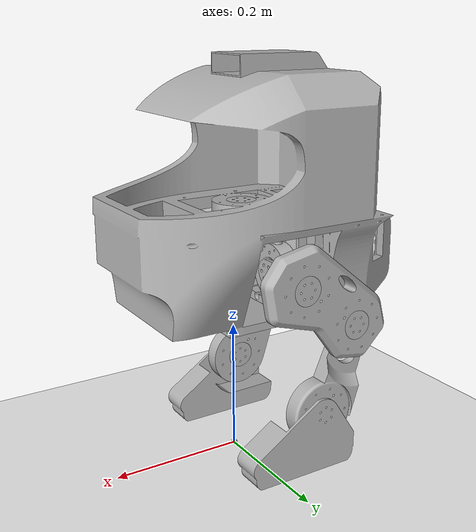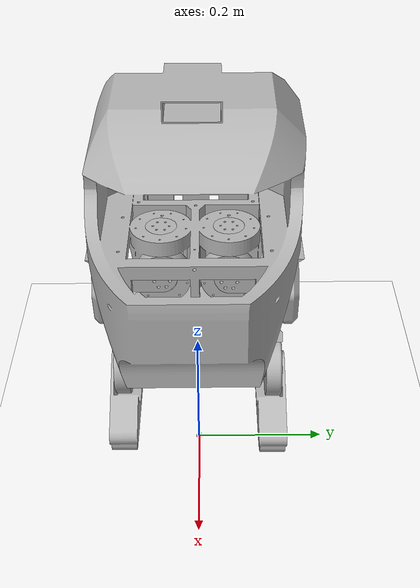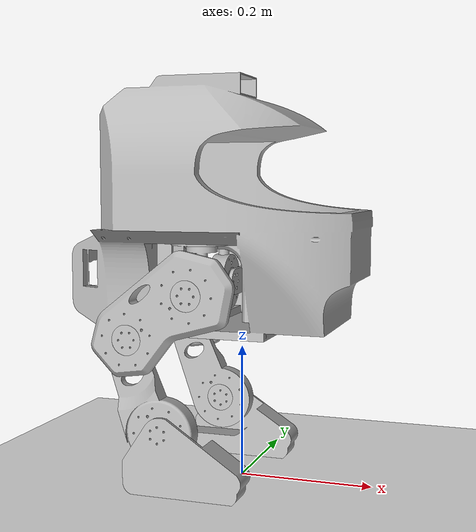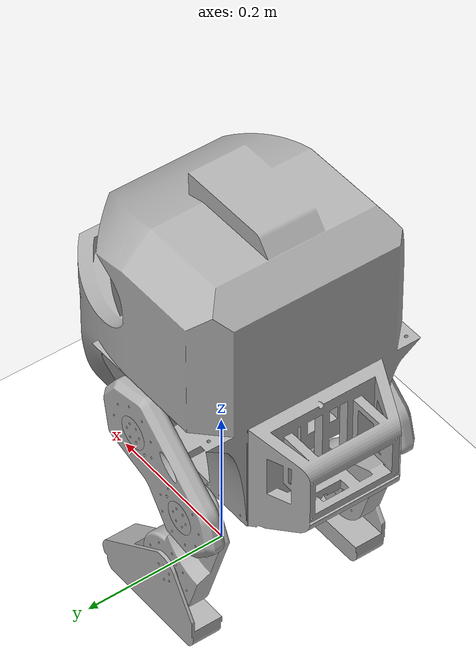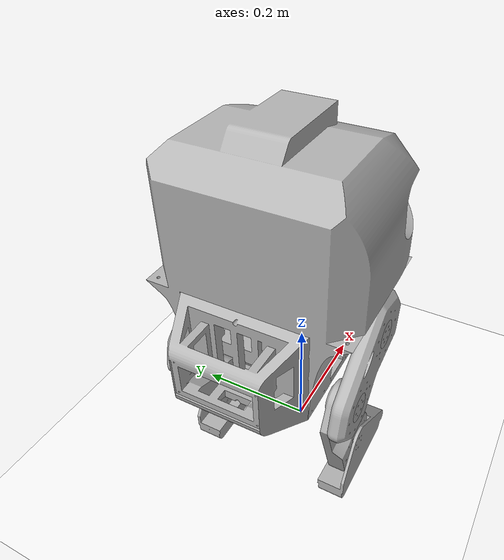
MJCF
<mujoco model=" scene">
  <include file="mak-zero.xml"/>

  <visual>
    <headlight diffuse="0.6 0.6 0.6"  ambient="0.3 0.3 0.3" specular="0 0 0"/>
    <rgba haze="0.15 0.25 0.35 1"/>
    <global azimuth="120" elevation="-20"/>
  </visual>

  <asset>
    <texture type="skybox" builtin="gradient" rgb1="0.3 0.5 0.7" rgb2="0 0 0" width="512"
        height="3072"/>
    <texture type="2d" name="groundplane" builtin="checker" mark="edge" rgb1="0.2 0.3 0.4"
        rgb2="0.1 0.2 0.3" markrgb="0.8 0.8 0.8" width="300" height="300"/>
    <material name="groundplane" texture="groundplane" texuniform="true" texrepeat="1 1"
        reflectance="0.2"/>
  </asset>

  <worldbody>
    <light pos="0 0 1.5" dir="0 0 -1" directional="true"/>
    <geom name="floor" size="0 0 0.25" type="plane" material="groundplane"/>
  </worldbody>

</mujoco>

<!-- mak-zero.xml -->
<mujoco model="mak-zero">
  <compiler angle="radian" />
  <option integrator="implicitfast"/>

  <default>
    <default class="mak-zero">
      <joint limited='true'/>
      <motor ctrllimited='true'/>
      <geom friction="1.0" margin="0.001" condim="1"/>
      <default class="leg-joint-param">
        <joint damping="0.01" frictionloss="0.1" armature="0.1" range="-0.785398 0.785398"/>
      </default>

      <default class="knee-joint-param">
        <joint damping="0.01" frictionloss="0.1" armature="0.1" range="-0.785398 0.785398"/>
      </default>

      <default class="ankle-joint-param">
        <joint damping="0.01" frictionloss="0.1" armature="0.1" range="-0.785398 0.785398"/>
      </default>
    </default>
  </default>

  <asset>
    <mesh name="pelvis" file="/Users/wangxiaochuan/wangxc/popmart/mak-gym/resources/robots/makZero/meshes/pelvis.stl" scale="0.001 0.001 0.001" />
    <mesh name="left_foot" file="/Users/wangxiaochuan/wangxc/popmart/mak-gym/resources/robots/makZero/meshes/left_foot.stl" scale="0.001 0.001 0.001" />
    <mesh name="left_shin" file="/Users/wangxiaochuan/wangxc/popmart/mak-gym/resources/robots/makZero/meshes/left_shin.stl" scale="0.001 0.001 0.001" />
    <mesh name="left_thigh" file="/Users/wangxiaochuan/wangxc/popmart/mak-gym/resources/robots/makZero/meshes/left_thigh.stl" scale="0.001 0.001 0.001" />
    <mesh name="left_hip" file="/Users/wangxiaochuan/wangxc/popmart/mak-gym/resources/robots/makZero/meshes/left_hip.stl" scale="0.001 0.001 0.001" />
    <mesh name="left_hip_rotation" file="/Users/wangxiaochuan/wangxc/popmart/mak-gym/resources/robots/makZero/meshes/left_hip_rotation.stl" scale="0.001 0.001 0.001" />
    <mesh name="right_foot" file="/Users/wangxiaochuan/wangxc/popmart/mak-gym/resources/robots/makZero/meshes/right_foot.stl" scale="0.001 0.001 0.001" />
    <mesh name="right_shin" file="/Users/wangxiaochuan/wangxc/popmart/mak-gym/resources/robots/makZero/meshes/right_shin.stl" scale="0.001 0.001 0.001" />
    <mesh name="right_thigh" file="/Users/wangxiaochuan/wangxc/popmart/mak-gym/resources/robots/makZero/meshes/right_thigh.stl" scale="0.001 0.001 0.001" />
    <mesh name="right_hip" file="/Users/wangxiaochuan/wangxc/popmart/mak-gym/resources/robots/makZero/meshes/right_hip.stl" scale="0.001 0.001 0.001" />
    <mesh name="right_hip_rotation" file="/Users/wangxiaochuan/wangxc/popmart/mak-gym/resources/robots/makZero/meshes/right_hip_rotation.stl" scale="0.001 0.001 0.001" />
  </asset>

  <worldbody>
    <light name="spotlight" mode="targetbodycom" target="mak-zero" pos="0 -1 2"/>
    <body name="mak-zero">
      <camera name="track" pos="0 -3 1" zaxis="0 -1 0.5" mode="track"/>
      <freejoint/>
      <body name="pelvis" pos="0 0 0" childclass="mak-zero">
        <geom type="mesh" rgba="0.7 0.7 0.7 1" mesh="pelvis"/>
        <inertial pos="-0.053756 0.00118338 0.341947" quat="0.480275 0.513547 0.53279 0.470893" mass="5.713" diaginertia="0.43175 0.373333 0.200101" />
        <site name="imu" pos="0 0 0"/>
        <body name="left_hip_rotation" pos="-0.046575 0.048318 0.381049">
          <inertial pos="0.046575 -0.048318 -0.381049" quat="0.999573 0.0213461 0.0199274 0.00141326" mass="0.633" diaginertia="0.00533636 0.004183 0.00196963" />
          <joint name="left_hip_yaw" pos="0 0 0" axis="0 0 -1" range="-0.349066 0.349066" actuatorfrcrange="-23.7 23.7" />
        <geom pos="0.046575 -0.048318 -0.381049" type="mesh" rgba="0.7 0.7 0.7 1" mesh="left_hip_rotation" />
        <body name="left_hip" pos="-0.012208 -0.000241 -0.088208">
          <inertial pos="0.058783 -0.048077 -0.292841" quat="0.704899 0.708795 -0.00571972 -0.0263546" mass="0.633" diaginertia="0.00149816 0.00136791 0.000505934" />
          <joint name="left_hip_roll" pos="0 0 0" axis="1 0 0" range="-0.174533 0.174533" actuatorfrcrange="-23.7 23.7" />
          <geom pos="0.058783 -0.048077 -0.292841" quat="1 0 0 0" type="mesh" rgba="0.7 0.7 0.7 1" mesh="left_hip" />
          <body name="left_thigh" pos="0.02885 0.1018 -0.000556">
            <inertial pos="0.029933 -0.149877 -0.292285" quat="0.633403 0.297734 0.294346 0.650781" mass="0.633" diaginertia="0.0473468 0.0413446 0.0120747" />
            <joint name="left_hip_pitch" pos="0 0 0" axis="0 1 0" range="-0.523599 0.523599" actuatorfrcrange="-23.7 23.7" />
            <geom pos="0.029933 -0.149877 -0.292285" quat="1 0 0 0" type="mesh" rgba="0.7 0.7 0.7 1" mesh="left_thigh" />
            <body name="left_shin" pos="-0.088973 0 -0.067516">
              <inertial pos="0.118906 -0.149877 -0.224769" quat="0.708097 -0.166338 -0.130184 0.673783" mass="0.633" diaginertia="0.0117688 0.0102167 0.00215741" />
              <joint name="left_knee" pos="0 0 0" axis="0 1 0" range="-0.523599 0.523599" actuatorfrcrange="-23.7 23.7" />
              <geom pos="0.118906 -0.149877 -0.224769" quat="1 0 0 0" type="mesh" rgba="0.7 0.7 0.7 1" mesh="left_shin" />
              <body name="left_foot_link" pos="0.044426 -0.04 -0.134774">
                <inertial pos="0.07448 -0.109877 -0.089995" quat="0.540863 0.468785 0.58167 0.386481" mass="0.678" diaginertia="0.0103795 0.00833717 0.00325637" />
                <joint name="left_ankle" pos="0 0 0" axis="0 1 0" range="-0.523599 0.523599" actuatorfrcrange="-23.7 23.7" />
                <geom pos="0.07448 -0.109877 -0.089995" quat="1 0 0 0" type="mesh" rgba="0.7 0.7 0.7 1" mesh="left_foot" />
                <body name="left_foot" pos="0.025 0 -0.0785">
                  <inertial pos="0 0 0" mass="1e-09" diaginertia="0 0 0" />
                  <body name="left_foot_force_sensor" pos="0 0 -0.001">
                    <inertial pos="0 0 0" mass="0.001" diaginertia="0.0001 0.0001 0.0001" />
                  </body>
                </body>
              </body>
            </body>
          </body>
        </body>
      </body>
        <body name="right_hip_rotation" pos="-0.046575 -0.051682 0.381049">
        <inertial pos="0.046575 0.051682 -0.381049" quat="0.999573 -0.0213461 0.0199274 -0.00141326" mass="0.633" diaginertia="0.00533636 0.004183 0.00196963" />
        <joint name="right_hip_yaw" pos="0 0 0" axis="0 0 -1" range="-0.349066 0.349066" actuatorfrcrange="-23.7 23.7" />
        <geom pos="0.046575 0.051682 -0.381049" type="mesh" rgba="0.7 0.7 0.7 1" mesh="right_hip_rotation" />
        <body name="right_hip" pos="-0.012208 -0.000241 -0.088208">
          <inertial pos="0.058783 0.051923 -0.292841" quat="0.708795 0.704899 0.0263546 0.00571972" mass="0.633" diaginertia="0.00149816 0.00136791 0.000505934" />
          <joint name="right_hip_roll" pos="0 0 0" axis="1 0 0" range="-0.174533 0.174533" actuatorfrcrange="-23.7 23.7" />
          <geom pos="0.058783 0.051923 -0.292841" quat="1 0 0 0" type="mesh" rgba="0.7 0.7 0.7 1" mesh="right_hip" />
          <body name="right_thigh" pos="0.02485 -0.1011 -0.000556">
            <inertial pos="0.033933 0.153023 -0.292285" quat="0.650781 0.294346 0.297734 0.633403" mass="0.633" diaginertia="0.0473468 0.0413446 0.0120747" />
            <joint name="right_hip_pitch" pos="0 0 0" axis="0 -1 0" range="-0.523599 0.523599" actuatorfrcrange="-23.7 23.7" />
            <geom pos="0.033933 0.153023 -0.292285" quat="1 0 0 0" type="mesh" rgba="0.7 0.7 0.7 1" mesh="right_thigh" />
            <body name="right_shin" pos="-0.090138 0 -0.065953">
              <inertial pos="0.124071 0.153023 -0.226332" quat="0.673783 -0.130184 -0.166338 0.708097" mass="0.633" diaginertia="0.0117688 0.0102167 0.00215741" />
              <joint name="right_knee" pos="0 0 0" axis="0 1 0" range="-0.523599 0.523599" actuatorfrcrange="-23.7 23.7" />
              <geom pos="0.124071 0.153023 -0.226332" quat="1 0 0 0" type="mesh" rgba="0.7 0.7 0.7 1" mesh="right_shin" />
              <body name="right_foot_link" pos="0.042068 0.04 -0.135529">
                <inertial pos="0.082003 0.113023 -0.090803" quat="0.386481 0.58167 0.468785 0.540863" mass="0.678" diaginertia="0.0103795 0.00833717 0.00325637" />
                <joint name="right_ankle" pos="0 0 0" axis="0 -1 0" range="-0.523599 0.523599" actuatorfrcrange="-23.7 23.7" />
                <geom pos="0.082003 0.113023 -0.090803" quat="1 0 0 0" type="mesh" rgba="0.7 0.7 0.7 1" mesh="right_foot" />
                <body name="right_foot" pos="0.025 0 -0.0785">
                  <inertial pos="0 0 0" mass="1e-09" diaginertia="0 0 0" />
                  <body name="right_foot_force_sensor" pos="0 0 -0.001">
                    <inertial pos="0 0 0" mass="0.001" diaginertia="0.0001 0.0001 0.0001" />
                  </body>
                </body>
              </body>
            </body>
          </body>
        </body>
      </body>
      </body>
    </body>
    <geom name="ground_plane" type="plane" size="5 5 10" material="MatPlane" rgba="1 1 1 1" /><light pos="0 0 1000" castshadow="true" />
  </worldbody>
  <contact>
    <exclude body1="pelvis" body2="right_hip"/>
    <exclude body1="pelvis" body2="left_hip"/>
    <exclude body1="pelvis" body2="left_thigh"/>
    <exclude body1="pelvis" body2="right_thigh"/>
  </contact>
  <actuator>
    <position kp="40" kv="1.3" name="left_hip_yaw" joint="left_hip_yaw" gear="1" forcerange="-23.7 23.7" ctrlrange="-30 30"/>
    <position kp="40" kv="1.3" name="left_hip_roll" joint="left_hip_roll" gear="1" forcerange="-23.7 23.7" ctrlrange="-30 30"/>
    <position kp="40" kv="1.3" name="left_hip_pitch" joint="left_hip_pitch" gear="1" forcerange="-23.7 23.7" ctrlrange="-30 30"/>
    <position kp="35" kv="1.3" name="left_knee" joint="left_knee" gear="1" forcerange="-23.7 23.7" ctrlrange="-30 30"/>
    <position kp="30" kv="1.3" name="left_ankle" joint="left_ankle" gear="1" forcerange="-23.7 23.7" ctrlrange="-30 30"/>
    <position kp="40" kv="1.3" name="right_hip_yaw" joint="right_hip_yaw" gear="1" forcerange="-23.7 23.7" ctrlrange="-30 30"/>
    <position kp="40" kv="1.3" name="right_hip_roll" joint="right_hip_roll" gear="1" forcerange="-23.7 23.7" ctrlrange="-30 30"/>
    <position kp="40" kv="1.3" name="right_hip_pitch" joint="right_hip_pitch" gear="1" forcerange="-23.7 23.7" ctrlrange="-30 30"/>
    <position kp="35" kv="1.3" name="right_knee" joint="right_knee" gear="1" forcerange="-23.7 23.7" ctrlrange="-30 30"/>
    <position kp="30" kv="1.6" name="right_ankle" joint="right_ankle" gear="1" forcerange="-23.7 23.7" ctrlrange="-30 30"/>
  </actuator>
  <sensor>
    <framequat name='orientation' objtype='site' noise='0.001' objname='imu'/>
    <framepos name='position' objtype='site' noise='0.001' objname='imu'/>
    <gyro name='angular-velocity' site='imu' noise='0.005' cutoff='34.9'/>
    <velocimeter name='linear-velocity' site='imu' noise='0.001' cutoff='30'/>
    <accelerometer name='linear-acceleration' site='imu' noise='0.005' cutoff='157'/>
    <magnetometer name='magnetometer' site='imu'/>
  </sensor>
  <asset>
    <texture name="texplane" builtin="checker" height="512" width="512" rgb1=".2 .3 .4" rgb2=".1 .15 .2" type="2d" />
    <material name="MatPlane" reflectance="0.5" shininess="0.01" specular="0.1" texrepeat="1 1" texture="texplane" texuniform="true" />
  </asset>
</mujoco>
